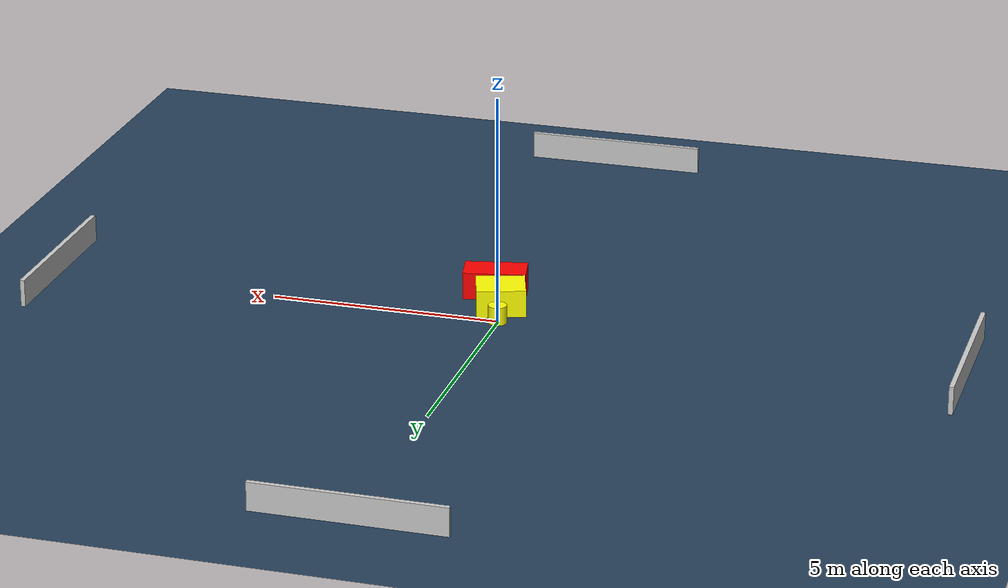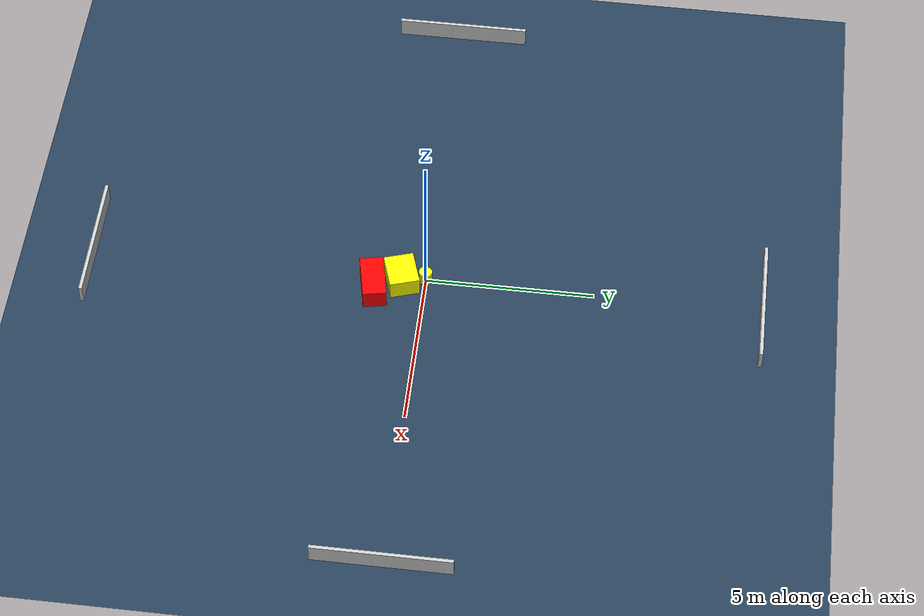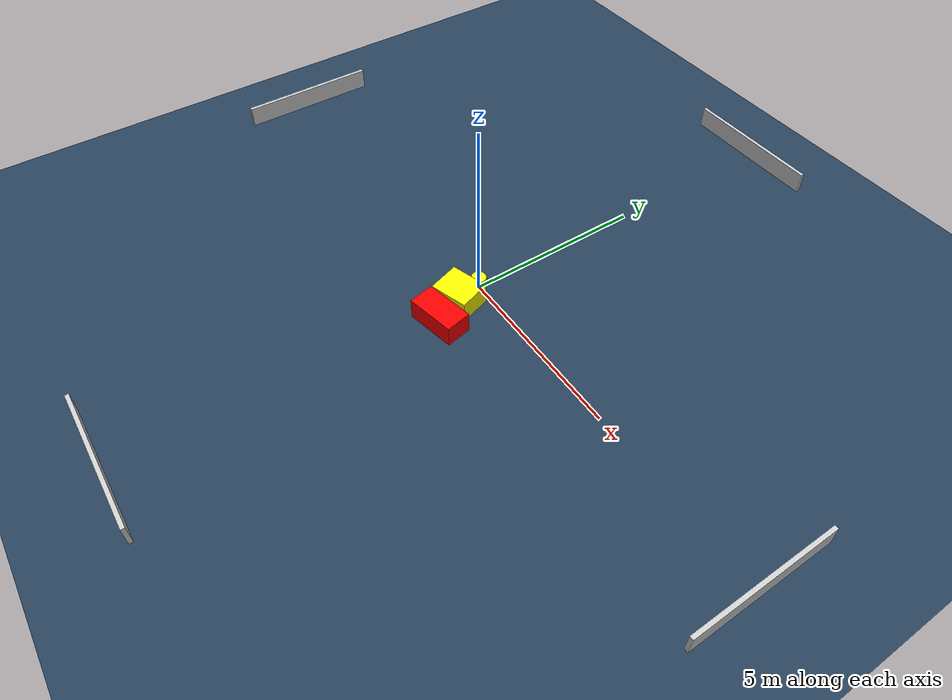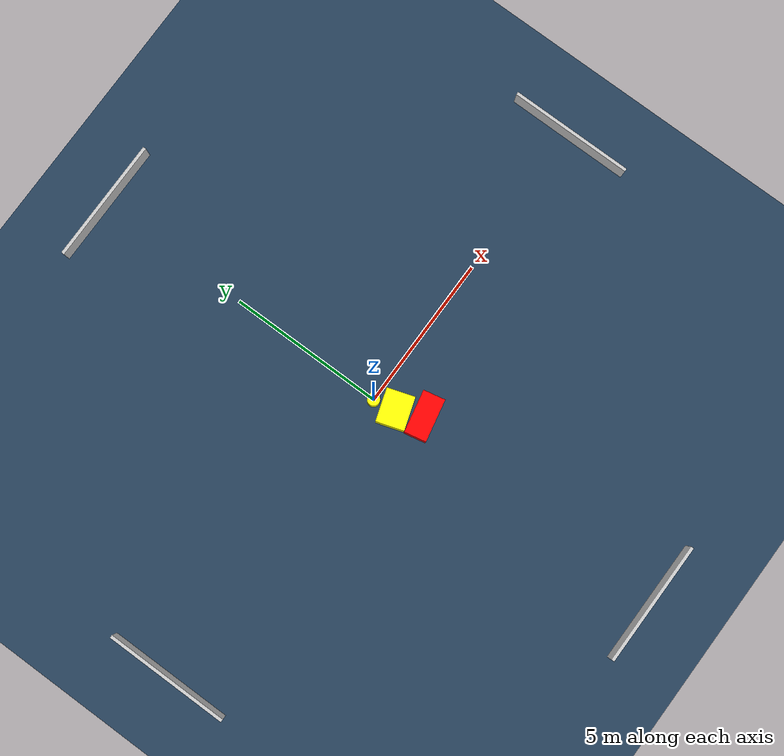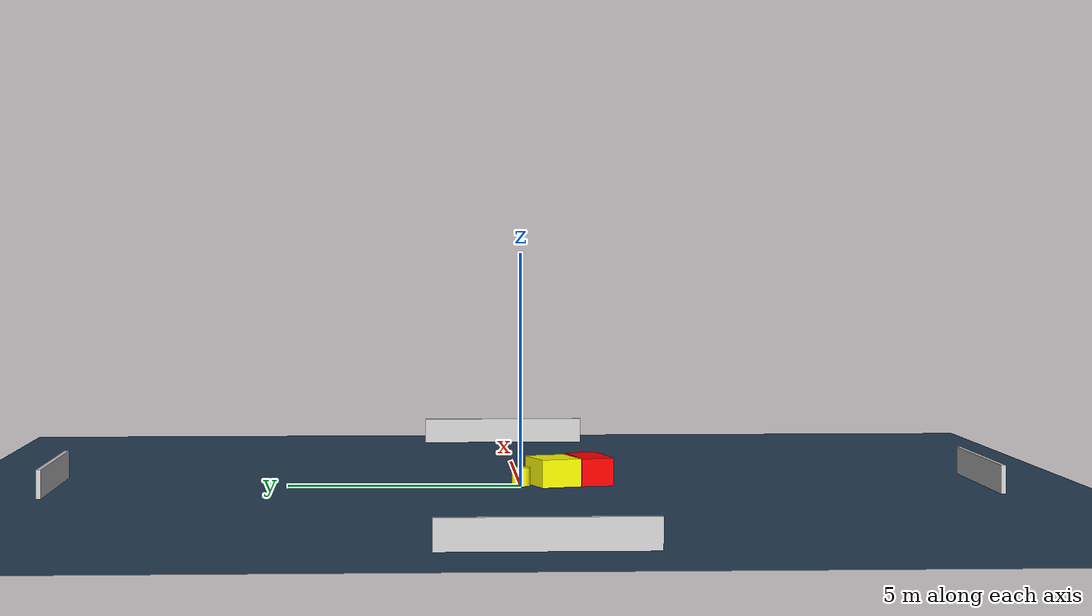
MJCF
<?xml version="1.0" ?>
<mujoco model="generated_environment">
  <option timestep="0.01" integrator="RK4" cone="elliptic"/>
  <default>
    <geom density="1"/>
  </default>
  <asset>
    <texture builtin="gradient" height="3072" name="skybox" rgb1="0.3 0.5 0.7" rgb2="0 0 0" type="skybox" width="512"/>
    <texture builtin="checker" height="300" name="groundplane" rgb1="0.2 0.3 0.4" rgb2="0.1 0.2 0.3" type="2d" width="300"/>
    <material name="groundplane" reflectance="0.2" texrepeat="5 5" texture="groundplane"/>
  </asset>
  <worldbody>
    <light dir="0 0 -1" directional="true" pos="0 0 1.5"/>
    <geom condim="3" friction="0.5 0.005 0.001" material="groundplane" name="floor" pos="0 0 0" size="0 0 0.05" type="plane"/>
    <body name="walls">
      <geom name="wall_1" condim="4" pos="-10.0 0.0 0.3" rgba="0.800000011920929 0.800000011920929 0.800000011920929 1.0" size="0.05 2.0 0.3" type="box"/>
      <geom name="wall_2" condim="4" pos="10.0 0.0 0.3" rgba="0.800000011920929 0.800000011920929 0.800000011920929 1.0" size="0.05 2.0 0.3" type="box"/>
      <geom name="wall_3" condim="4" pos="0.0 -10.0 0.3" rgba="0.800000011920929 0.800000011920929 0.800000011920929 1.0" size="2.0 0.05 0.3" type="box"/>
      <geom name="wall_4" condim="4" pos="0.0 10.0 0.3" rgba="0.800000011920929 0.800000011920929 0.800000011920929 1.0" size="2.0 0.05 0.3" type="box"/>
    </body>
    <body name="robot">
      <joint name="joint_x" type="slide" pos="0 0 0" axis="1 0 0"/>
      <joint name="joint_y" type="slide" pos="0 0 0" axis="0 1 0"/>
      <geom name="robot" type="cylinder" pos="0.0 0.0 0.2" size="0.2 0.2 0.0" mass="5.0" friction="1.0 0.005 0.0001" condim="4" rgba="1.0 1.0 0.0 1.0"/>
    </body>
    <body name="obstacle_1_movable">
      <geom name="obstacle_1_movable" condim="4" pos="0.1343249659712481 -0.7004434135148041 0.3" euler="0 0 17.77784224654782" friction="0.0 0.005 0.001" rgba="1.0 1.0 0.0 1.0" size="0.529301544956382 0.4472023546831463 0.3" type="box" mass="0.1"/>
      <joint type="free"/>
    </body>
    <body name="obstacle_2_static">
      <geom name="obstacle_2_static" condim="4" pos="0.484725429914885 -1.5068042085072302 0.3" euler="0 0 101.61081486304631" friction="0.0 0.005 0.001" rgba="1.0 0.0 0.0 1.0" size="0.35223434972233214 0.6823095883255837 0.3" type="box"/>
    </body>
  </worldbody>
  <actuator>
    <motor name="actuator_x" joint="joint_x" gear="1" ctrlrange="-1 1"/>
    <motor name="actuator_y" joint="joint_y" gear="1" ctrlrange="-1 1"/>
  </actuator>
</mujoco>
